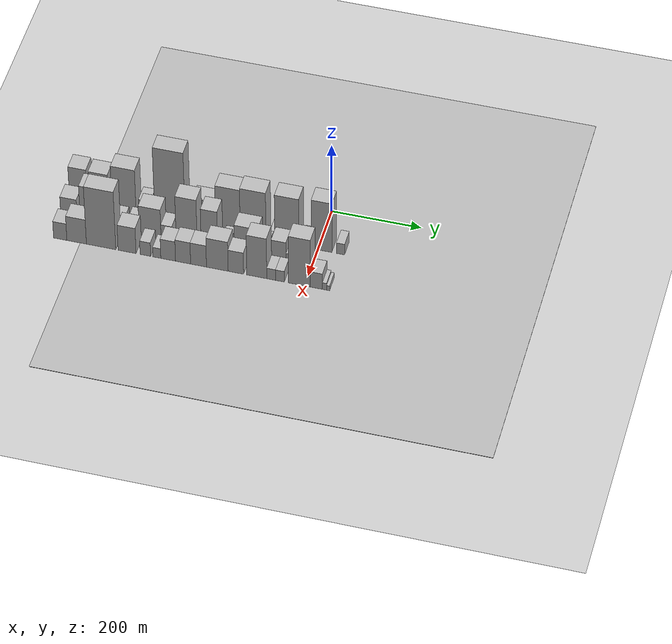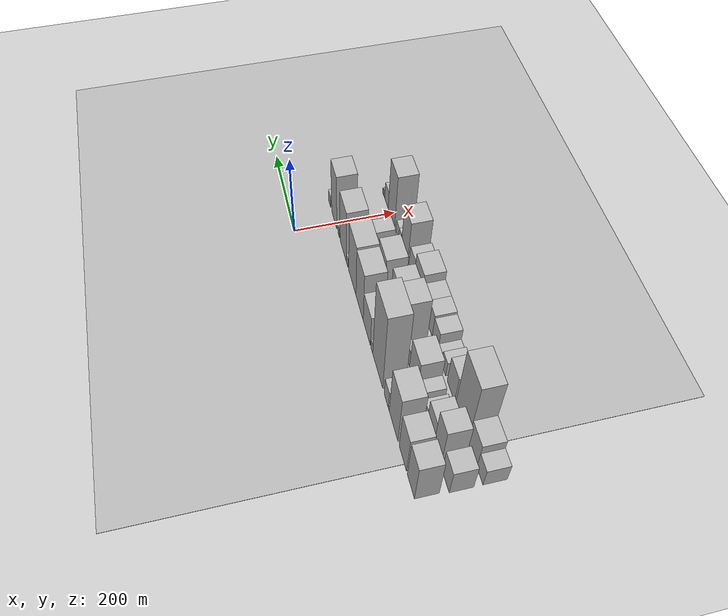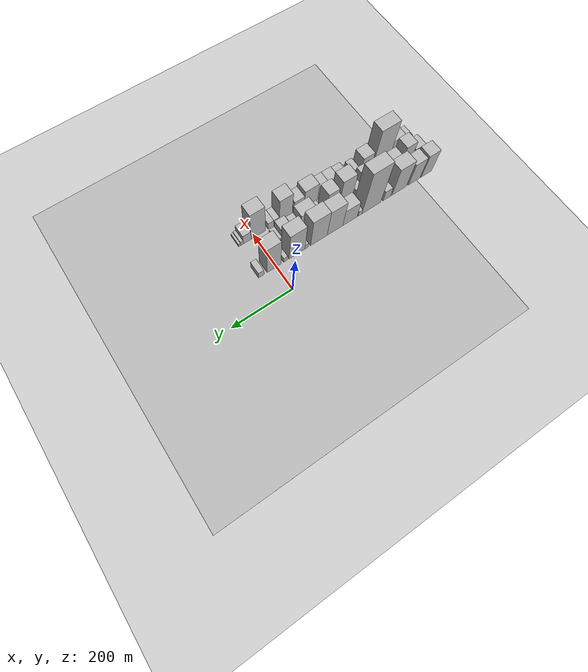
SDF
<sdf version="1.6">
 <world name="default">
  <include><name>ground_plane_1</name><uri>model://HANNAS_ground_plane</uri></include>
  <include>
   <name>ground_plane_2</name>
   <uri>model://HANNAS_ground_plane</uri>
   <pose>100 0 0  0 0 0</pose>
  </include>
  <model name="building_1">
   <static>1</static>
   <pose>100.0000 -536.8642 0 0.000000 0.000000 0.000000</pose>
   <link name="link">
    <pose>0 0 55.50 0 0 0</pose>
    <collision name="collision"><geometry><box><size>40.0000 40.2715 111.0000</size></box></geometry></collision>
    <visual name="visual">
     <cast_shadows>0</cast_shadows>
     <geometry><box><size>40.0000 40.2715 111.0000</size></box></geometry>
     <material>
      <script>
       <uri>model://HANNAS_wall/materials/scripts</uri>
       <uri>model://HANNAS_wall/materials/textures</uri>
       <name>vrc/HANNAS_wall</name>
      </script>
     </material>
    </visual>
   </link>
  </model>
  <model name="building_2">
   <static>1</static>
   <pose>100.0000 -490.1506 0 0.000000 0.000000 0.000000</pose>
   <link name="link">
    <pose>0 0 54.00 0 0 0</pose>
    <collision name="collision"><geometry><box><size>40.0000 43.1557 108.0000</size></box></geometry></collision>
    <visual name="visual">
     <cast_shadows>0</cast_shadows>
     <geometry><box><size>40.0000 43.1557 108.0000</size></box></geometry>
     <material>
      <script>
       <uri>model://HANNAS_wall/materials/scripts</uri>
       <uri>model://HANNAS_wall/materials/textures</uri>
       <name>vrc/HANNAS_wall</name>
      </script>
     </material>
    </visual>
   </link>
  </model>
  <model name="building_3">
   <static>1</static>
   <pose>100.0000 -433.5643 0 0.000000 0.000000 0.000000</pose>
   <link name="link">
    <pose>0 0 69.00 0 0 0</pose>
    <collision name="collision"><geometry><box><size>40.0000 54.0171 138.0000</size></box></geometry></collision>
    <visual name="visual">
     <cast_shadows>0</cast_shadows>
     <geometry><box><size>40.0000 54.0171 138.0000</size></box></geometry>
     <material>
      <script>
       <uri>model://HANNAS_wall/materials/scripts</uri>
       <uri>model://HANNAS_wall/materials/textures</uri>
       <name>vrc/HANNAS_wall</name>
      </script>
     </material>
    </visual>
   </link>
  </model>
  <model name="building_4">
   <static>1</static>
   <pose>100.0000 -403.4667 0 0.000000 0.000000 0.000000</pose>
   <link name="link">
    <pose>0 0 7.50 0 0 0</pose>
    <collision name="collision"><geometry><box><size>40.0000 6.1781 15.0000</size></box></geometry></collision>
    <visual name="visual">
     <cast_shadows>0</cast_shadows>
     <geometry><box><size>40.0000 6.1781 15.0000</size></box></geometry>
     <material>
      <script>
       <uri>model://HANNAS_wall/materials/scripts</uri>
       <uri>model://HANNAS_wall/materials/textures</uri>
       <name>vrc/HANNAS_wall</name>
      </script>
     </material>
    </visual>
   </link>
  </model>
  <model name="building_5">
   <static>1</static>
   <pose>100.0000 -386.9525 0 0.000000 0.000000 0.000000</pose>
   <link name="link">
    <pose>0 0 25.50 0 0 0</pose>
    <collision name="collision"><geometry><box><size>40.0000 26.8504 51.0000</size></box></geometry></collision>
    <visual name="visual">
     <cast_shadows>0</cast_shadows>
     <geometry><box><size>40.0000 26.8504 51.0000</size></box></geometry>
     <material>
      <script>
       <uri>model://HANNAS_wall/materials/scripts</uri>
       <uri>model://HANNAS_wall/materials/textures</uri>
       <name>vrc/HANNAS_wall</name>
      </script>
     </material>
    </visual>
   </link>
  </model>
  <model name="building_6">
   <static>1</static>
   <pose>100.0000 -330.4034 0 0.000000 0.000000 0.000000</pose>
   <link name="link">
    <pose>0 0 109.50 0 0 0</pose>
    <collision name="collision"><geometry><box><size>40.0000 68.2477 219.0000</size></box></geometry></collision>
    <visual name="visual">
     <cast_shadows>0</cast_shadows>
     <geometry><box><size>40.0000 68.2477 219.0000</size></box></geometry>
     <material>
      <script>
       <uri>model://HANNAS_wall/materials/scripts</uri>
       <uri>model://HANNAS_wall/materials/textures</uri>
       <name>vrc/HANNAS_wall</name>
      </script>
     </material>
    </visual>
   </link>
  </model>
  <model name="building_7">
   <static>1</static>
   <pose>100.0000 -289.7703 0 0.000000 0.000000 0.000000</pose>
   <link name="link">
    <pose>0 0 13.50 0 0 0</pose>
    <collision name="collision"><geometry><box><size>40.0000 13.0185 27.0000</size></box></geometry></collision>
    <visual name="visual">
     <cast_shadows>0</cast_shadows>
     <geometry><box><size>40.0000 13.0185 27.0000</size></box></geometry>
     <material>
      <script>
       <uri>model://HANNAS_wall/materials/scripts</uri>
       <uri>model://HANNAS_wall/materials/textures</uri>
       <name>vrc/HANNAS_wall</name>
      </script>
     </material>
    </visual>
   </link>
  </model>
  <model name="building_8">
   <static>1</static>
   <pose>100.0000 -253.4309 0 0.000000 0.000000 0.000000</pose>
   <link name="link">
    <pose>0 0 43.50 0 0 0</pose>
    <collision name="collision"><geometry><box><size>40.0000 51.6604 87.0000</size></box></geometry></collision>
    <visual name="visual">
     <cast_shadows>0</cast_shadows>
     <geometry><box><size>40.0000 51.6604 87.0000</size></box></geometry>
     <material>
      <script>
       <uri>model://HANNAS_wall/materials/scripts</uri>
       <uri>model://HANNAS_wall/materials/textures</uri>
       <name>vrc/HANNAS_wall</name>
      </script>
     </material>
    </visual>
   </link>
  </model>
  <model name="building_9">
   <static>1</static>
   <pose>100.0000 -200.1595 0 0.000000 0.000000 0.000000</pose>
   <link name="link">
    <pose>0 0 69.00 0 0 0</pose>
    <collision name="collision"><geometry><box><size>40.0000 54.8824 138.0000</size></box></geometry></collision>
    <visual name="visual">
     <cast_shadows>0</cast_shadows>
     <geometry><box><size>40.0000 54.8824 138.0000</size></box></geometry>
     <material>
      <script>
       <uri>model://HANNAS_wall/materials/scripts</uri>
       <uri>model://HANNAS_wall/materials/textures</uri>
       <name>vrc/HANNAS_wall</name>
      </script>
     </material>
    </visual>
   </link>
  </model>
  <model name="building_10">
   <static>1</static>
   <pose>100.0000 -143.9426 0 0.000000 0.000000 0.000000</pose>
   <link name="link">
    <pose>0 0 72.00 0 0 0</pose>
    <collision name="collision"><geometry><box><size>40.0000 57.5515 144.0000</size></box></geometry></collision>
    <visual name="visual">
     <cast_shadows>0</cast_shadows>
     <geometry><box><size>40.0000 57.5515 144.0000</size></box></geometry>
     <material>
      <script>
       <uri>model://HANNAS_wall/materials/scripts</uri>
       <uri>model://HANNAS_wall/materials/textures</uri>
       <name>vrc/HANNAS_wall</name>
      </script>
     </material>
    </visual>
   </link>
  </model>
  <model name="building_11">
   <static>1</static>
   <pose>100.0000 -101.3857 0 0.000000 0.000000 0.000000</pose>
   <link name="link">
    <pose>0 0 13.50 0 0 0</pose>
    <collision name="collision"><geometry><box><size>40.0000 11.5622 27.0000</size></box></geometry></collision>
    <visual name="visual">
     <cast_shadows>0</cast_shadows>
     <geometry><box><size>40.0000 11.5622 27.0000</size></box></geometry>
     <material>
      <script>
       <uri>model://HANNAS_wall/materials/scripts</uri>
       <uri>model://HANNAS_wall/materials/textures</uri>
       <name>vrc/HANNAS_wall</name>
      </script>
     </material>
    </visual>
   </link>
  </model>
  <model name="building_12">
   <static>1</static>
   <pose>100.0000 -68.6896 0 0.000000 0.000000 0.000000</pose>
   <link name="link">
    <pose>0 0 72.00 0 0 0</pose>
    <collision name="collision"><geometry><box><size>40.0000 53.8299 144.0000</size></box></geometry></collision>
    <visual name="visual">
     <cast_shadows>0</cast_shadows>
     <geometry><box><size>40.0000 53.8299 144.0000</size></box></geometry>
     <material>
      <script>
       <uri>model://HANNAS_wall/materials/scripts</uri>
       <uri>model://HANNAS_wall/materials/textures</uri>
       <name>vrc/HANNAS_wall</name>
      </script>
     </material>
    </visual>
   </link>
  </model>
  <model name="building_13">
   <static>1</static>
   <pose>100.0000 -30.1146 0 0.000000 0.000000 0.000000</pose>
   <link name="link">
    <pose>0 0 13.50 0 0 0</pose>
    <collision name="collision"><geometry><box><size>40.0000 13.3202 27.0000</size></box></geometry></collision>
    <visual name="visual">
     <cast_shadows>0</cast_shadows>
     <geometry><box><size>40.0000 13.3202 27.0000</size></box></geometry>
     <material>
      <script>
       <uri>model://HANNAS_wall/materials/scripts</uri>
       <uri>model://HANNAS_wall/materials/textures</uri>
       <name>vrc/HANNAS_wall</name>
      </script>
     </material>
    </visual>
   </link>
  </model>
  <model name="building_14">
   <static>1</static>
   <pose>100.0000 8.6162 0 0.000000 0.000000 0.000000</pose>
   <link name="link">
    <pose>0 0 75.00 0 0 0</pose>
    <collision name="collision"><geometry><box><size>40.0000 46.1414 150.0000</size></box></geometry></collision>
    <visual name="visual">
     <cast_shadows>0</cast_shadows>
     <geometry><box><size>40.0000 46.1414 150.0000</size></box></geometry>
     <material>
      <script>
       <uri>model://HANNAS_wall/materials/scripts</uri>
       <uri>model://HANNAS_wall/materials/textures</uri>
       <name>vrc/HANNAS_wall</name>
      </script>
     </material>
    </visual>
   </link>
  </model>
  <model name="building_15">
   <static>1</static>
   <pose>100.0000 50.8726 0 0.000000 0.000000 0.000000</pose>
   <link name="link">
    <pose>0 0 16.50 0 0 0</pose>
    <collision name="collision"><geometry><box><size>40.0000 18.3715 33.0000</size></box></geometry></collision>
    <visual name="visual">
     <cast_shadows>0</cast_shadows>
     <geometry><box><size>40.0000 18.3715 33.0000</size></box></geometry>
     <material>
      <script>
       <uri>model://HANNAS_wall/materials/scripts</uri>
       <uri>model://HANNAS_wall/materials/textures</uri>
       <name>vrc/HANNAS_wall</name>
      </script>
     </material>
    </visual>
   </link>
  </model>
  <model name="building_32">
   <static>1</static>
   <pose>155.0000 -541.5286 0 0.000000 0.000000 0.000000</pose>
   <link name="link">
    <pose>0 0 36.00 0 0 0</pose>
    <collision name="collision"><geometry><box><size>40.0000 36.9427 72.0000</size></box></geometry></collision>
    <visual name="visual">
     <cast_shadows>0</cast_shadows>
     <geometry><box><size>40.0000 36.9427 72.0000</size></box></geometry>
     <material>
      <script>
       <uri>model://HANNAS_wall/materials/scripts</uri>
       <uri>model://HANNAS_wall/materials/textures</uri>
       <name>vrc/HANNAS_wall</name>
      </script>
     </material>
    </visual>
   </link>
  </model>
  <model name="building_33">
   <static>1</static>
   <pose>155.0000 -497.5827 0 0.000000 0.000000 0.000000</pose>
   <link name="link">
    <pose>0 0 58.50 0 0 0</pose>
    <collision name="collision"><geometry><box><size>40.0000 36.9491 117.0000</size></box></geometry></collision>
    <visual name="visual">
     <cast_shadows>0</cast_shadows>
     <geometry><box><size>40.0000 36.9491 117.0000</size></box></geometry>
     <material>
      <script>
       <uri>model://HANNAS_wall/materials/scripts</uri>
       <uri>model://HANNAS_wall/materials/textures</uri>
       <name>vrc/HANNAS_wall</name>
      </script>
     </material>
    </visual>
   </link>
  </model>
  <model name="building_34">
   <static>1</static>
   <pose>155.0000 -459.2635 0 0.000000 0.000000 0.000000</pose>
   <link name="link">
    <pose>0 0 37.50 0 0 0</pose>
    <collision name="collision"><geometry><box><size>40.0000 39.6893 75.0000</size></box></geometry></collision>
    <visual name="visual">
     <cast_shadows>0</cast_shadows>
     <geometry><box><size>40.0000 39.6893 75.0000</size></box></geometry>
     <material>
      <script>
       <uri>model://HANNAS_wall/materials/scripts</uri>
       <uri>model://HANNAS_wall/materials/textures</uri>
       <name>vrc/HANNAS_wall</name>
      </script>
     </material>
    </visual>
   </link>
  </model>
  <model name="building_35">
   <static>1</static>
   <pose>155.0000 -428.1269 0 0.000000 0.000000 0.000000</pose>
   <link name="link">
    <pose>0 0 19.50 0 0 0</pose>
    <collision name="collision"><geometry><box><size>40.0000 22.5840 39.0000</size></box></geometry></collision>
    <visual name="visual">
     <cast_shadows>0</cast_shadows>
     <geometry><box><size>40.0000 22.5840 39.0000</size></box></geometry>
     <material>
      <script>
       <uri>model://HANNAS_wall/materials/scripts</uri>
       <uri>model://HANNAS_wall/materials/textures</uri>
       <name>vrc/HANNAS_wall</name>
      </script>
     </material>
    </visual>
   </link>
  </model>
  <model name="building_36">
   <static>1</static>
   <pose>155.0000 -396.2588 0 0.000000 0.000000 0.000000</pose>
   <link name="link">
    <pose>0 0 21.00 0 0 0</pose>
    <collision name="collision"><geometry><box><size>40.0000 25.1522 42.0000</size></box></geometry></collision>
    <visual name="visual">
     <cast_shadows>0</cast_shadows>
     <geometry><box><size>40.0000 25.1522 42.0000</size></box></geometry>
     <material>
      <script>
       <uri>model://HANNAS_wall/materials/scripts</uri>
       <uri>model://HANNAS_wall/materials/textures</uri>
       <name>vrc/HANNAS_wall</name>
      </script>
     </material>
    </visual>
   </link>
  </model>
  <model name="building_37">
   <static>1</static>
   <pose>155.0000 -359.1557 0 0.000000 0.000000 0.000000</pose>
   <link name="link">
    <pose>0 0 45.00 0 0 0</pose>
    <collision name="collision"><geometry><box><size>40.0000 49.0539 90.0000</size></box></geometry></collision>
    <visual name="visual">
     <cast_shadows>0</cast_shadows>
     <geometry><box><size>40.0000 49.0539 90.0000</size></box></geometry>
     <material>
      <script>
       <uri>model://HANNAS_wall/materials/scripts</uri>
       <uri>model://HANNAS_wall/materials/textures</uri>
       <name>vrc/HANNAS_wall</name>
      </script>
     </material>
    </visual>
   </link>
  </model>
  <model name="building_38">
   <static>1</static>
   <pose>155.0000 -322.1478 0 0.000000 0.000000 0.000000</pose>
   <link name="link">
    <pose>0 0 22.50 0 0 0</pose>
    <collision name="collision"><geometry><box><size>40.0000 24.9620 45.0000</size></box></geometry></collision>
    <visual name="visual">
     <cast_shadows>0</cast_shadows>
     <geometry><box><size>40.0000 24.9620 45.0000</size></box></geometry>
     <material>
      <script>
       <uri>model://HANNAS_wall/materials/scripts</uri>
       <uri>model://HANNAS_wall/materials/textures</uri>
       <name>vrc/HANNAS_wall</name>
      </script>
     </material>
    </visual>
   </link>
  </model>
  <model name="building_39">
   <static>1</static>
   <pose>155.0000 -277.1574 0 0.000000 0.000000 0.000000</pose>
   <link name="link">
    <pose>0 0 70.50 0 0 0</pose>
    <collision name="collision"><geometry><box><size>40.0000 47.0189 141.0000</size></box></geometry></collision>
    <visual name="visual">
     <cast_shadows>0</cast_shadows>
     <geometry><box><size>40.0000 47.0189 141.0000</size></box></geometry>
     <material>
      <script>
       <uri>model://HANNAS_wall/materials/scripts</uri>
       <uri>model://HANNAS_wall/materials/textures</uri>
       <name>vrc/HANNAS_wall</name>
      </script>
     </material>
    </visual>
   </link>
  </model>
  <model name="building_40">
   <static>1</static>
   <pose>155.0000 -226.2119 0 0.000000 0.000000 0.000000</pose>
   <link name="link">
    <pose>0 0 58.50 0 0 0</pose>
    <collision name="collision"><geometry><box><size>40.0000 36.8719 117.0000</size></box></geometry></collision>
    <visual name="visual">
     <cast_shadows>0</cast_shadows>
     <geometry><box><size>40.0000 36.8719 117.0000</size></box></geometry>
     <material>
      <script>
       <uri>model://HANNAS_wall/materials/scripts</uri>
       <uri>model://HANNAS_wall/materials/textures</uri>
       <name>vrc/HANNAS_wall</name>
      </script>
     </material>
    </visual>
   </link>
  </model>
  <model name="building_41">
   <static>1</static>
   <pose>155.0000 -188.1447 0 0.000000 0.000000 0.000000</pose>
   <link name="link">
    <pose>0 0 19.50 0 0 0</pose>
    <collision name="collision"><geometry><box><size>40.0000 21.2625 39.0000</size></box></geometry></collision>
    <visual name="visual">
     <cast_shadows>0</cast_shadows>
     <geometry><box><size>40.0000 21.2625 39.0000</size></box></geometry>
     <material>
      <script>
       <uri>model://HANNAS_wall/materials/scripts</uri>
       <uri>model://HANNAS_wall/materials/textures</uri>
       <name>vrc/HANNAS_wall</name>
      </script>
     </material>
    </visual>
   </link>
  </model>
  <model name="building_42">
   <static>1</static>
   <pose>155.0000 -144.4756 0 0.000000 0.000000 0.000000</pose>
   <link name="link">
    <pose>0 0 43.50 0 0 0</pose>
    <collision name="collision"><geometry><box><size>40.0000 52.0758 87.0000</size></box></geometry></collision>
    <visual name="visual">
     <cast_shadows>0</cast_shadows>
     <geometry><box><size>40.0000 52.0758 87.0000</size></box></geometry>
     <material>
      <script>
       <uri>model://HANNAS_wall/materials/scripts</uri>
       <uri>model://HANNAS_wall/materials/textures</uri>
       <name>vrc/HANNAS_wall</name>
      </script>
     </material>
    </visual>
   </link>
  </model>
  <model name="building_43">
   <static>1</static>
   <pose>155.0000 -106.0479 0 0.000000 0.000000 0.000000</pose>
   <link name="link">
    <pose>0 0 24.00 0 0 0</pose>
    <collision name="collision"><geometry><box><size>40.0000 24.7795 48.0000</size></box></geometry></collision>
    <visual name="visual">
     <cast_shadows>0</cast_shadows>
     <geometry><box><size>40.0000 24.7795 48.0000</size></box></geometry>
     <material>
      <script>
       <uri>model://HANNAS_wall/materials/scripts</uri>
       <uri>model://HANNAS_wall/materials/textures</uri>
       <name>vrc/HANNAS_wall</name>
      </script>
     </material>
    </visual>
   </link>
  </model>
  <model name="building_44">
   <static>1</static>
   <pose>155.0000 -72.1825 0 0.000000 0.000000 0.000000</pose>
   <link name="link">
    <pose>0 0 31.50 0 0 0</pose>
    <collision name="collision"><geometry><box><size>40.0000 32.9512 63.0000</size></box></geometry></collision>
    <visual name="visual">
     <cast_shadows>0</cast_shadows>
     <geometry><box><size>40.0000 32.9512 63.0000</size></box></geometry>
     <material>
      <script>
       <uri>model://HANNAS_wall/materials/scripts</uri>
       <uri>model://HANNAS_wall/materials/textures</uri>
       <name>vrc/HANNAS_wall</name>
      </script>
     </material>
    </visual>
   </link>
  </model>
  <model name="building_45">
   <static>1</static>
   <pose>155.0000 -46.7586 0 0.000000 0.000000 0.000000</pose>
   <link name="link">
    <pose>0 0 15.00 0 0 0</pose>
    <collision name="collision"><geometry><box><size>40.0000 17.8967 30.0000</size></box></geometry></collision>
    <visual name="visual">
     <cast_shadows>0</cast_shadows>
     <geometry><box><size>40.0000 17.8967 30.0000</size></box></geometry>
     <material>
      <script>
       <uri>model://HANNAS_wall/materials/scripts</uri>
       <uri>model://HANNAS_wall/materials/textures</uri>
       <name>vrc/HANNAS_wall</name>
      </script>
     </material>
    </visual>
   </link>
  </model>
  <model name="building_61">
   <static>1</static>
   <pose>210.0000 -545.0363 0 0.000000 0.000000 0.000000</pose>
   <link name="link">
    <pose>0 0 25.50 0 0 0</pose>
    <collision name="collision"><geometry><box><size>40.0000 29.9273 51.0000</size></box></geometry></collision>
    <visual name="visual">
     <cast_shadows>0</cast_shadows>
     <geometry><box><size>40.0000 29.9273 51.0000</size></box></geometry>
     <material>
      <script>
       <uri>model://HANNAS_wall/materials/scripts</uri>
       <uri>model://HANNAS_wall/materials/textures</uri>
       <name>vrc/HANNAS_wall</name>
      </script>
     </material>
    </visual>
   </link>
  </model>
  <model name="building_62">
   <static>1</static>
   <pose>210.0000 -508.0636 0 0.000000 0.000000 0.000000</pose>
   <link name="link">
    <pose>0 0 37.50 0 0 0</pose>
    <collision name="collision"><geometry><box><size>40.0000 44.0182 75.0000</size></box></geometry></collision>
    <visual name="visual">
     <cast_shadows>0</cast_shadows>
     <geometry><box><size>40.0000 44.0182 75.0000</size></box></geometry>
     <material>
      <script>
       <uri>model://HANNAS_wall/materials/scripts</uri>
       <uri>model://HANNAS_wall/materials/textures</uri>
       <name>vrc/HANNAS_wall</name>
      </script>
     </material>
    </visual>
   </link>
  </model>
  <model name="building_63">
   <static>1</static>
   <pose>210.0000 -453.0409 0 0.000000 0.000000 0.000000</pose>
   <link name="link">
    <pose>0 0 88.50 0 0 0</pose>
    <collision name="collision"><geometry><box><size>40.0000 66.0271 177.0000</size></box></geometry></collision>
    <visual name="visual">
     <cast_shadows>0</cast_shadows>
     <geometry><box><size>40.0000 66.0271 177.0000</size></box></geometry>
     <material>
      <script>
       <uri>model://HANNAS_wall/materials/scripts</uri>
       <uri>model://HANNAS_wall/materials/textures</uri>
       <name>vrc/HANNAS_wall</name>
      </script>
     </material>
    </visual>
   </link>
  </model>
  <model name="building_64">
   <static>1</static>
   <pose>210.0000 -394.8408 0 0.000000 0.000000 0.000000</pose>
   <link name="link">
    <pose>0 0 39.00 0 0 0</pose>
    <collision name="collision"><geometry><box><size>40.0000 40.3731 78.0000</size></box></geometry></collision>
    <visual name="visual">
     <cast_shadows>0</cast_shadows>
     <geometry><box><size>40.0000 40.3731 78.0000</size></box></geometry>
     <material>
      <script>
       <uri>model://HANNAS_wall/materials/scripts</uri>
       <uri>model://HANNAS_wall/materials/textures</uri>
       <name>vrc/HANNAS_wall</name>
      </script>
     </material>
    </visual>
   </link>
  </model>
  <model name="building_65">
   <static>1</static>
   <pose>210.0000 -353.7734 0 0.000000 0.000000 0.000000</pose>
   <link name="link">
    <pose>0 0 21.00 0 0 0</pose>
    <collision name="collision"><geometry><box><size>40.0000 23.7617 42.0000</size></box></geometry></collision>
    <visual name="visual">
     <cast_shadows>0</cast_shadows>
     <geometry><box><size>40.0000 23.7617 42.0000</size></box></geometry>
     <material>
      <script>
       <uri>model://HANNAS_wall/materials/scripts</uri>
       <uri>model://HANNAS_wall/materials/textures</uri>
       <name>vrc/HANNAS_wall</name>
      </script>
     </material>
    </visual>
   </link>
  </model>
  <model name="building_66">
   <static>1</static>
   <pose>210.0000 -328.1353 0 0.000000 0.000000 0.000000</pose>
   <link name="link">
    <pose>0 0 15.00 0 0 0</pose>
    <collision name="collision"><geometry><box><size>40.0000 17.5145 30.0000</size></box></geometry></collision>
    <visual name="visual">
     <cast_shadows>0</cast_shadows>
     <geometry><box><size>40.0000 17.5145 30.0000</size></box></geometry>
     <material>
      <script>
       <uri>model://HANNAS_wall/materials/scripts</uri>
       <uri>model://HANNAS_wall/materials/textures</uri>
       <name>vrc/HANNAS_wall</name>
      </script>
     </material>
    </visual>
   </link>
  </model>
  <model name="building_67">
   <static>1</static>
   <pose>210.0000 -302.9038 0 0.000000 0.000000 0.000000</pose>
   <link name="link">
    <pose>0 0 30.00 0 0 0</pose>
    <collision name="collision"><geometry><box><size>40.0000 32.9485 60.0000</size></box></geometry></collision>
    <visual name="visual">
     <cast_shadows>0</cast_shadows>
     <geometry><box><size>40.0000 32.9485 60.0000</size></box></geometry>
     <material>
      <script>
       <uri>model://HANNAS_wall/materials/scripts</uri>
       <uri>model://HANNAS_wall/materials/textures</uri>
       <name>vrc/HANNAS_wall</name>
      </script>
     </material>
    </visual>
   </link>
  </model>
  <model name="building_68">
   <static>1</static>
   <pose>210.0000 -269.6178 0 0.000000 0.000000 0.000000</pose>
   <link name="link">
    <pose>0 0 33.00 0 0 0</pose>
    <collision name="collision"><geometry><box><size>40.0000 33.6233 66.0000</size></box></geometry></collision>
    <visual name="visual">
     <cast_shadows>0</cast_shadows>
     <geometry><box><size>40.0000 33.6233 66.0000</size></box></geometry>
     <material>
      <script>
       <uri>model://HANNAS_wall/materials/scripts</uri>
       <uri>model://HANNAS_wall/materials/textures</uri>
       <name>vrc/HANNAS_wall</name>
      </script>
     </material>
    </visual>
   </link>
  </model>
  <model name="building_69">
   <static>1</static>
   <pose>210.0000 -235.1448 0 0.000000 0.000000 0.000000</pose>
   <link name="link">
    <pose>0 0 33.00 0 0 0</pose>
    <collision name="collision"><geometry><box><size>40.0000 35.3226 66.0000</size></box></geometry></collision>
    <visual name="visual">
     <cast_shadows>0</cast_shadows>
     <geometry><box><size>40.0000 35.3226 66.0000</size></box></geometry>
     <material>
      <script>
       <uri>model://HANNAS_wall/materials/scripts</uri>
       <uri>model://HANNAS_wall/materials/textures</uri>
       <name>vrc/HANNAS_wall</name>
      </script>
     </material>
    </visual>
   </link>
  </model>
  <model name="building_70">
   <static>1</static>
   <pose>210.0000 -193.3120 0 0.000000 0.000000 0.000000</pose>
   <link name="link">
    <pose>0 0 45.00 0 0 0</pose>
    <collision name="collision"><geometry><box><size>40.0000 48.3430 90.0000</size></box></geometry></collision>
    <visual name="visual">
     <cast_shadows>0</cast_shadows>
     <geometry><box><size>40.0000 48.3430 90.0000</size></box></geometry>
     <material>
      <script>
       <uri>model://HANNAS_wall/materials/scripts</uri>
       <uri>model://HANNAS_wall/materials/textures</uri>
       <name>vrc/HANNAS_wall</name>
      </script>
     </material>
    </visual>
   </link>
  </model>
  <model name="building_71">
   <static>1</static>
   <pose>210.0000 -152.0020 0 0.000000 0.000000 0.000000</pose>
   <link name="link">
    <pose>0 0 33.00 0 0 0</pose>
    <collision name="collision"><geometry><box><size>40.0000 34.2771 66.0000</size></box></geometry></collision>
    <visual name="visual">
     <cast_shadows>0</cast_shadows>
     <geometry><box><size>40.0000 34.2771 66.0000</size></box></geometry>
     <material>
      <script>
       <uri>model://HANNAS_wall/materials/scripts</uri>
       <uri>model://HANNAS_wall/materials/textures</uri>
       <name>vrc/HANNAS_wall</name>
      </script>
     </material>
    </visual>
   </link>
  </model>
  <model name="building_72">
   <static>1</static>
   <pose>210.0000 -105.6692 0 0.000000 0.000000 0.000000</pose>
   <link name="link">
    <pose>0 0 61.50 0 0 0</pose>
    <collision name="collision"><geometry><box><size>40.0000 44.3886 123.0000</size></box></geometry></collision>
    <visual name="visual">
     <cast_shadows>0</cast_shadows>
     <geometry><box><size>40.0000 44.3886 123.0000</size></box></geometry>
     <material>
      <script>
       <uri>model://HANNAS_wall/materials/scripts</uri>
       <uri>model://HANNAS_wall/materials/textures</uri>
       <name>vrc/HANNAS_wall</name>
      </script>
     </material>
    </visual>
   </link>
  </model>
  <model name="building_73">
   <static>1</static>
   <pose>210.0000 -73.7554 0 0.000000 0.000000 0.000000</pose>
   <link name="link">
    <pose>0 0 16.50 0 0 0</pose>
    <collision name="collision"><geometry><box><size>40.0000 19.4390 33.0000</size></box></geometry></collision>
    <visual name="visual">
     <cast_shadows>0</cast_shadows>
     <geometry><box><size>40.0000 19.4390 33.0000</size></box></geometry>
     <material>
      <script>
       <uri>model://HANNAS_wall/materials/scripts</uri>
       <uri>model://HANNAS_wall/materials/textures</uri>
       <name>vrc/HANNAS_wall</name>
      </script>
     </material>
    </visual>
   </link>
  </model>
  <model name="building_74">
   <static>1</static>
   <pose>210.0000 -54.2612 0 0.000000 0.000000 0.000000</pose>
   <link name="link">
    <pose>0 0 16.50 0 0 0</pose>
    <collision name="collision"><geometry><box><size>40.0000 19.5492 33.0000</size></box></geometry></collision>
    <visual name="visual">
     <cast_shadows>0</cast_shadows>
     <geometry><box><size>40.0000 19.5492 33.0000</size></box></geometry>
     <material>
      <script>
       <uri>model://HANNAS_wall/materials/scripts</uri>
       <uri>model://HANNAS_wall/materials/textures</uri>
       <name>vrc/HANNAS_wall</name>
      </script>
     </material>
    </visual>
   </link>
  </model>
  <model name="building_75">
   <static>1</static>
   <pose>210.0000 -11.2513 0 0.000000 0.000000 0.000000</pose>
   <link name="link">
    <pose>0 0 72.00 0 0 0</pose>
    <collision name="collision"><geometry><box><size>40.0000 48.4706 144.0000</size></box></geometry></collision>
    <visual name="visual">
     <cast_shadows>0</cast_shadows>
     <geometry><box><size>40.0000 48.4706 144.0000</size></box></geometry>
     <material>
      <script>
       <uri>model://HANNAS_wall/materials/scripts</uri>
       <uri>model://HANNAS_wall/materials/textures</uri>
       <name>vrc/HANNAS_wall</name>
      </script>
     </material>
    </visual>
   </link>
  </model>
  <model name="building_76">
   <static>1</static>
   <pose>210.0000 26.2102 0 0.000000 0.000000 0.000000</pose>
   <link name="link">
    <pose>0 0 24.00 0 0 0</pose>
    <collision name="collision"><geometry><box><size>40.0000 26.4526 48.0000</size></box></geometry></collision>
    <visual name="visual">
     <cast_shadows>0</cast_shadows>
     <geometry><box><size>40.0000 26.4526 48.0000</size></box></geometry>
     <material>
      <script>
       <uri>model://HANNAS_wall/materials/scripts</uri>
       <uri>model://HANNAS_wall/materials/textures</uri>
       <name>vrc/HANNAS_wall</name>
      </script>
     </material>
    </visual>
   </link>
  </model>
  <model name="building_77">
   <static>1</static>
   <pose>210.0000 44.0130 0 0.000000 0.000000 0.000000</pose>
   <link name="link">
    <pose>0 0 10.50 0 0 0</pose>
    <collision name="collision"><geometry><box><size>40.0000 9.1529 21.0000</size></box></geometry></collision>
    <visual name="visual">
     <cast_shadows>0</cast_shadows>
     <geometry><box><size>40.0000 9.1529 21.0000</size></box></geometry>
     <material>
      <script>
       <uri>model://HANNAS_wall/materials/scripts</uri>
       <uri>model://HANNAS_wall/materials/textures</uri>
       <name>vrc/HANNAS_wall</name>
      </script>
     </material>
    </visual>
   </link>
  </model>
  <model name="building_78">
   <static>1</static>
   <pose>210.0000 52.0424 0 0.000000 0.000000 0.000000</pose>
   <link name="link">
    <pose>0 0 7.50 0 0 0</pose>
    <collision name="collision"><geometry><box><size>40.0000 6.9059 15.0000</size></box></geometry></collision>
    <visual name="visual">
     <cast_shadows>0</cast_shadows>
     <geometry><box><size>40.0000 6.9059 15.0000</size></box></geometry>
     <material>
      <script>
       <uri>model://HANNAS_wall/materials/scripts</uri>
       <uri>model://HANNAS_wall/materials/textures</uri>
       <name>vrc/HANNAS_wall</name>
      </script>
     </material>
    </visual>
   </link>
  </model>
 </world>
</sdf>
